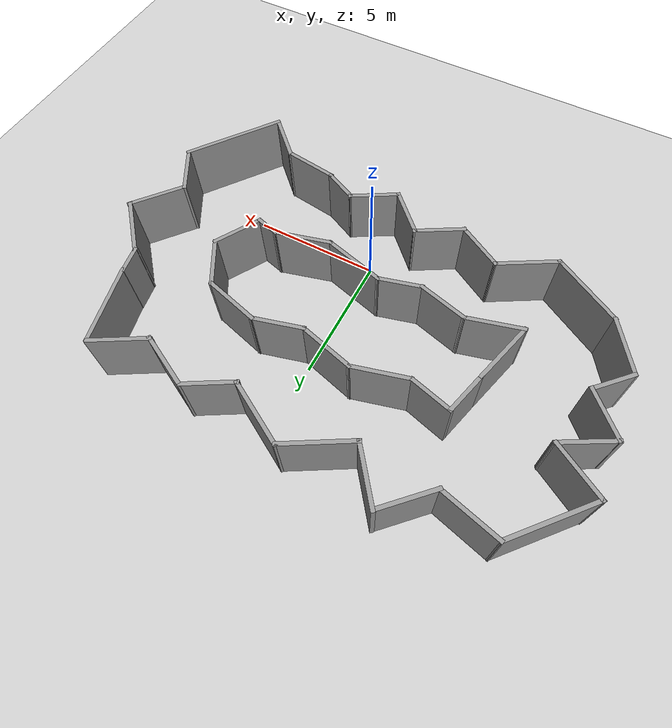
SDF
<sdf version="1.6">
 <world name="default">
  <light name="sun" type="directional">
   <pose>0 0 10 0 -0 0</pose>
   <diffuse>0.8 0.8 0.8 1</diffuse>
   <specular>0.1 0.1 0.1 1</specular>
   <attenuation>
    <range>1000</range>
    <constant>0.9</constant>
    <linear>0.01</linear>
    <quadratic>0.001</quadratic>
   </attenuation>
   <direction>-0.5 0.5 -1</direction>
  </light>
  <model name="ground_plane">
   <static>1</static>
   <link name="link">
    <collision name="collision">
     <geometry><plane><normal>0 0 1</normal><size>100 100</size></plane></geometry>
     <surface><friction><ode><mu>100</mu><mu2>50</mu2></ode></friction></surface>
    </collision>
    <visual name="visual">
     <cast_shadows>0</cast_shadows>
     <geometry><plane><normal>0 0 1</normal><size>100 100</size></plane></geometry>
     <material>
      <script><uri>file://media/materials/scripts/gazebo.material</uri><name>Gazebo/Grey</name></script>
     </material>
    </visual>
   </link>
  </model>
  <gravity>0 0 -9.8</gravity>
  <magnetic_field>6e-06 2.3e-05 -4.2e-05</magnetic_field>
  <atmosphere type="adiabatic"/>
  <physics name="default_physics" default="0" type="ode">
   <max_step_size>0.001</max_step_size>
   <real_time_factor>1</real_time_factor>
   <real_time_update_rate>1000</real_time_update_rate>
  </physics>
  <scene><ambient>0.4 0.4 0.4 1</ambient><background>0.7 0.7 0.7 1</background><shadows>1</shadows></scene>
  <spherical_coordinates>
   <surface_model>EARTH_WGS84</surface_model>
   <latitude_deg>0</latitude_deg>
   <longitude_deg>0</longitude_deg>
   <elevation>0</elevation>
   <heading_deg>0</heading_deg>
  </spherical_coordinates>
  <model name="suyunzzz_word">
   <pose>-0.860375 2.82689 0 0 -0 0</pose>
   <link name="Wall_10">
    <collision name="Wall_10_Collision">
     <geometry><box><size>2 0.15 2.5</size></box></geometry>
     <pose>0 0 1.25 0 -0 0</pose>
    </collision>
    <visual name="Wall_10_Visual">
     <pose>0 0 1.25 0 -0 0</pose>
     <geometry><box><size>2 0.15 2.5</size></box></geometry>
     <material>
      <script><uri>file://media/materials/scripts/gazebo.material</uri><name>Gazebo/Grey</name></script>
      <ambient>1 1 1 1</ambient>
     </material>
    </visual>
    <pose>-2.91981 -4.1287 0 0 0 -0.523599</pose>
   </link>
   <link name="Wall_11">
    <collision name="Wall_11_Collision">
     <geometry><box><size>2 0.15 2.5</size></box></geometry>
     <pose>0 0 1.25 0 -0 0</pose>
    </collision>
    <visual name="Wall_11_Visual">
     <pose>0 0 1.25 0 -0 0</pose>
     <geometry><box><size>2 0.15 2.5</size></box></geometry>
     <material>
      <script><uri>file://media/materials/scripts/gazebo.material</uri><name>Gazebo/Grey</name></script>
      <ambient>1 1 1 1</ambient>
     </material>
    </visual>
    <pose>-1.31767 -4.1287 0 0 -0 0.523599</pose>
   </link>
   <link name="Wall_12">
    <collision name="Wall_12_Collision">
     <geometry><box><size>2 0.15 2.5</size></box></geometry>
     <pose>0 0 1.25 0 -0 0</pose>
    </collision>
    <visual name="Wall_12_Visual">
     <pose>0 0 1.25 0 -0 0</pose>
     <geometry><box><size>2 0.15 2.5</size></box></geometry>
     <material>
      <script><uri>file://media/materials/scripts/gazebo.material</uri><name>Gazebo/Grey</name></script>
      <ambient>1 1 1 1</ambient>
     </material>
    </visual>
    <pose>0.137482 -4.32027 0 0 0 -0.785398</pose>
   </link>
   <link name="Wall_13">
    <collision name="Wall_13_Collision">
     <geometry><box><size>2 0.15 2.5</size></box></geometry>
     <pose>0 0 1.25 0 -0 0</pose>
    </collision>
    <visual name="Wall_13_Visual">
     <pose>0 0 1.25 0 -0 0</pose>
     <geometry><box><size>2 0.15 2.5</size></box></geometry>
     <material>
      <script><uri>file://media/materials/scripts/gazebo.material</uri><name>Gazebo/Grey</name></script>
      <ambient>1 1 1 1</ambient>
     </material>
    </visual>
    <pose>1.59263 -4.51185 0 0 -0 0.523599</pose>
   </link>
   <link name="Wall_14">
    <collision name="Wall_14_Collision">
     <geometry><box><size>1.45825 0.15 2.5</size></box></geometry>
     <pose>0 0 1.25 0 -0 0</pose>
    </collision>
    <visual name="Wall_14_Visual">
     <pose>0 0 1.25 0 -0 0</pose>
     <geometry><box><size>1.45825 0.15 2.5</size></box></geometry>
     <material>
      <script><uri>file://media/materials/scripts/gazebo.material</uri><name>Gazebo/Grey</name></script>
      <ambient>1 1 1 1</ambient>
     </material>
    </visual>
    <pose>2.98507 -4.32893 0 0 0 -0.441634</pose>
   </link>
   <link name="Wall_15">
    <collision name="Wall_15_Collision">
     <geometry><box><size>2.16972 0.15 2.5</size></box></geometry>
     <pose>0 0 1.25 0 -0 0</pose>
    </collision>
    <visual name="Wall_15_Visual">
     <pose>0 0 1.25 0 -0 0</pose>
     <geometry><box><size>2.16972 0.15 2.5</size></box></geometry>
     <material>
      <script><uri>file://media/materials/scripts/gazebo.material</uri><name>Gazebo/Grey</name></script>
      <ambient>1 1 1 1</ambient>
     </material>
    </visual>
    <pose>4.57701 -4.7603 0 0 0 -0.135663</pose>
   </link>
   <link name="Wall_16">
    <collision name="Wall_16_Collision">
     <geometry><box><size>2.03413 0.15 2.5</size></box></geometry>
     <pose>0 0 1.25 0 -0 0</pose>
    </collision>
    <visual name="Wall_16_Visual">
     <pose>0 0 1.25 0 -0 0</pose>
     <geometry><box><size>2.03413 0.15 2.5</size></box></geometry>
     <material>
      <script><uri>file://media/materials/scripts/gazebo.material</uri><name>Gazebo/Grey</name></script>
      <ambient>1 1 1 1</ambient>
     </material>
    </visual>
    <pose>6.25699 -5.53428 0 0 0 -0.765285</pose>
   </link>
   <link name="Wall_17">
    <collision name="Wall_17_Collision">
     <geometry><box><size>4.06353 0.15 2.5</size></box></geometry>
     <pose>0 0 1.25 0 -0 0</pose>
    </collision>
    <visual name="Wall_17_Visual">
     <pose>0 0 1.25 0 -0 0</pose>
     <geometry><box><size>4.06353 0.15 2.5</size></box></geometry>
     <material>
      <script><uri>file://media/materials/scripts/gazebo.material</uri><name>Gazebo/Grey</name></script>
      <ambient>1 1 1 1</ambient>
     </material>
    </visual>
    <pose>8.10434 -4.62093 0 0 -0 0.940844</pose>
   </link>
   <link name="Wall_18">
    <collision name="Wall_18_Collision">
     <geometry><box><size>2 0.15 2.5</size></box></geometry>
     <pose>0 0 1.25 0 -0 0</pose>
    </collision>
    <visual name="Wall_18_Visual">
     <pose>0 0 1.25 0 -0 0</pose>
     <geometry><box><size>2 0.15 2.5</size></box></geometry>
     <material>
      <script><uri>file://media/materials/scripts/gazebo.material</uri><name>Gazebo/Grey</name></script>
      <ambient>1 1 1 1</ambient>
     </material>
    </visual>
    <pose>8.77709 -2.23868 0 0 -0 2.0944</pose>
   </link>
   <link name="Wall_19">
    <collision name="Wall_19_Collision">
     <geometry><box><size>2.30357 0.15 2.5</size></box></geometry>
     <pose>0 0 1.25 0 -0 0</pose>
    </collision>
    <visual name="Wall_19_Visual">
     <pose>0 0 1.25 0 -0 0</pose>
     <geometry><box><size>2.30357 0.15 2.5</size></box></geometry>
     <material>
      <script><uri>file://media/materials/scripts/gazebo.material</uri><name>Gazebo/Grey</name></script>
      <ambient>1 1 1 1</ambient>
     </material>
    </visual>
    <pose>9.01049 -0.60141 0 0 -0 0.889203</pose>
   </link>
   <link name="Wall_20">
    <collision name="Wall_20_Collision">
     <geometry><box><size>2.36672 0.15 2.5</size></box></geometry>
     <pose>0 0 1.25 0 -0 0</pose>
    </collision>
    <visual name="Wall_20_Visual">
     <pose>0 0 1.25 0 -0 0</pose>
     <geometry><box><size>2.36672 0.15 2.5</size></box></geometry>
     <material>
      <script><uri>file://media/materials/scripts/gazebo.material</uri><name>Gazebo/Grey</name></script>
      <ambient>1 1 1 1</ambient>
     </material>
    </visual>
    <pose>8.91029 1.03917 0 0 -0 2.30625</pose>
   </link>
   <link name="Wall_21">
    <collision name="Wall_21_Collision">
     <geometry><box><size>1.09046 0.15 2.5</size></box></geometry>
     <pose>0 0 1.25 0 -0 0</pose>
    </collision>
    <visual name="Wall_21_Visual">
     <pose>0 0 1.25 0 -0 0</pose>
     <geometry><box><size>1.09046 0.15 2.5</size></box></geometry>
     <material>
      <script><uri>file://media/materials/scripts/gazebo.material</uri><name>Gazebo/Grey</name></script>
      <ambient>1 1 1 1</ambient>
     </material>
    </visual>
    <pose>8.05992 2.32274 0 0 -0 1.76176</pose>
   </link>
   <link name="Wall_22">
    <collision name="Wall_22_Collision">
     <geometry><box><size>3.09658 0.15 2.5</size></box></geometry>
     <pose>0 0 1.25 0 -0 0</pose>
    </collision>
    <visual name="Wall_22_Visual">
     <pose>0 0 1.25 0 -0 0</pose>
     <geometry><box><size>3.09658 0.15 2.5</size></box></geometry>
     <material>
      <script><uri>file://media/materials/scripts/gazebo.material</uri><name>Gazebo/Grey</name></script>
      <ambient>1 1 1 1</ambient>
     </material>
    </visual>
    <pose>7.62803 4.21301 0 0 -0 1.81774</pose>
   </link>
   <link name="Wall_23">
    <collision name="Wall_23_Collision">
     <geometry><box><size>2.25 0.15 2.5</size></box></geometry>
     <pose>0 0 1.25 0 -0 0</pose>
    </collision>
    <visual name="Wall_23_Visual">
     <pose>0 0 1.25 0 -0 0</pose>
     <geometry><box><size>2.25 0.15 2.5</size></box></geometry>
     <material>
      <script><uri>file://media/materials/scripts/gazebo.material</uri><name>Gazebo/Grey</name></script>
      <ambient>1 1 1 1</ambient>
     </material>
    </visual>
    <pose>6.34109 5.1341 0 0 0 -2.61799</pose>
   </link>
   <link name="Wall_24">
    <collision name="Wall_24_Collision">
     <geometry><box><size>2.27753 0.15 2.5</size></box></geometry>
     <pose>0 0 1.25 0 -0 0</pose>
    </collision>
    <visual name="Wall_24_Visual">
     <pose>0 0 1.25 0 -0 0</pose>
     <geometry><box><size>2.27753 0.15 2.5</size></box></geometry>
     <material>
      <script><uri>file://media/materials/scripts/gazebo.material</uri><name>Gazebo/Grey</name></script>
      <ambient>1 1 1 1</ambient>
     </material>
    </visual>
    <pose>4.4962 5.06414 0 0 -0 2.68131</pose>
   </link>
   <link name="Wall_25">
    <collision name="Wall_25_Collision">
     <geometry><box><size>2 0.15 2.5</size></box></geometry>
     <pose>0 0 1.25 0 -0 0</pose>
    </collision>
    <visual name="Wall_25_Visual">
     <pose>0 0 1.25 0 -0 0</pose>
     <geometry><box><size>2 0.15 2.5</size></box></geometry>
     <material>
      <script><uri>file://media/materials/scripts/gazebo.material</uri><name>Gazebo/Grey</name></script>
      <ambient>1 1 1 1</ambient>
     </material>
    </visual>
    <pose>2.74207 5.05668 0 0 0 -2.61799</pose>
   </link>
   <link name="Wall_26">
    <collision name="Wall_26_Collision">
     <geometry><box><size>2.64602 0.15 2.5</size></box></geometry>
     <pose>0 0 1.25 0 -0 0</pose>
    </collision>
    <visual name="Wall_26_Visual">
     <pose>0 0 1.25 0 -0 0</pose>
     <geometry><box><size>2.64602 0.15 2.5</size></box></geometry>
     <material>
      <script><uri>file://media/materials/scripts/gazebo.material</uri><name>Gazebo/Grey</name></script>
      <ambient>1 1 1 1</ambient>
     </material>
    </visual>
    <pose>0.850146 5.21795 0 0 -0 2.63432</pose>
   </link>
   <link name="Wall_27">
    <collision name="Wall_27_Collision">
     <geometry><box><size>2.75 0.15 2.5</size></box></geometry>
     <pose>0 0 1.25 0 -0 0</pose>
    </collision>
    <visual name="Wall_27_Visual">
     <pose>0 0 1.25 0 -0 0</pose>
     <geometry><box><size>2.75 0.15 2.5</size></box></geometry>
     <material>
      <script><uri>file://media/materials/scripts/gazebo.material</uri><name>Gazebo/Grey</name></script>
      <ambient>1 1 1 1</ambient>
     </material>
    </visual>
    <pose>-1.36654 5.15673 0 0 0 -2.61799</pose>
   </link>
   <link name="Wall_28">
    <collision name="Wall_28_Collision">
     <geometry><box><size>2.28908 0.15 2.5</size></box></geometry>
     <pose>0 0 1.25 0 -0 0</pose>
    </collision>
    <visual name="Wall_28_Visual">
     <pose>0 0 1.25 0 -0 0</pose>
     <geometry><box><size>2.28908 0.15 2.5</size></box></geometry>
     <material>
      <script><uri>file://media/materials/scripts/gazebo.material</uri><name>Gazebo/Grey</name></script>
      <ambient>1 1 1 1</ambient>
     </material>
    </visual>
    <pose>-3.15613 5.36288 0 0 -0 2.2403</pose>
   </link>
   <link name="Wall_29">
    <collision name="Wall_29_Collision">
     <geometry><box><size>2.25 0.15 2.5</size></box></geometry>
     <pose>0 0 1.25 0 -0 0</pose>
    </collision>
    <visual name="Wall_29_Visual">
     <pose>0 0 1.25 0 -0 0</pose>
     <geometry><box><size>2.25 0.15 2.5</size></box></geometry>
     <material>
      <script><uri>file://media/materials/scripts/gazebo.material</uri><name>Gazebo/Grey</name></script>
      <ambient>1 1 1 1</ambient>
     </material>
    </visual>
    <pose>-4.56235 5.44158 0 0 0 -2.35619</pose>
   </link>
   <link name="Wall_30">
    <collision name="Wall_30_Collision">
     <geometry><box><size>2.37545 0.15 2.5</size></box></geometry>
     <pose>0 0 1.25 0 -0 0</pose>
    </collision>
    <visual name="Wall_30_Visual">
     <pose>0 0 1.25 0 -0 0</pose>
     <geometry><box><size>2.37545 0.15 2.5</size></box></geometry>
     <material>
      <script><uri>file://media/materials/scripts/gazebo.material</uri><name>Gazebo/Grey</name></script>
      <ambient>1 1 1 1</ambient>
     </material>
    </visual>
    <pose>-6.38361 4.98929 0 0 -0 2.89402</pose>
   </link>
   <link name="Wall_31">
    <collision name="Wall_31_Collision">
     <geometry><box><size>3.46437 0.15 2.5</size></box></geometry>
     <pose>0 0 1.25 0 -0 0</pose>
    </collision>
    <visual name="Wall_31_Visual">
     <pose>0 0 1.25 0 -0 0</pose>
     <geometry><box><size>3.46437 0.15 2.5</size></box></geometry>
     <material>
      <script><uri>file://media/materials/scripts/gazebo.material</uri><name>Gazebo/Grey</name></script>
      <ambient>1 1 1 1</ambient>
     </material>
    </visual>
    <pose>-8.56843 4.02788 0 0 0 -2.30152</pose>
   </link>
   <link name="Wall_32">
    <collision name="Wall_32_Collision">
     <geometry><box><size>2.25 0.15 2.5</size></box></geometry>
     <pose>0 0 1.25 0 -0 0</pose>
    </collision>
    <visual name="Wall_32_Visual">
     <pose>0 0 1.25 0 -0 0</pose>
     <geometry><box><size>2.25 0.15 2.5</size></box></geometry>
     <material>
      <script><uri>file://media/materials/scripts/gazebo.material</uri><name>Gazebo/Grey</name></script>
      <ambient>1 1 1 1</ambient>
     </material>
    </visual>
    <pose>-8.78262 2.26879 0 0 0 -0.523599</pose>
   </link>
   <link name="Wall_33">
    <collision name="Wall_33_Collision">
     <geometry><box><size>2.16283 0.15 2.5</size></box></geometry>
     <pose>0 0 1.25 0 -0 0</pose>
    </collision>
    <visual name="Wall_33_Visual">
     <pose>0 0 1.25 0 -0 0</pose>
     <geometry><box><size>2.16283 0.15 2.5</size></box></geometry>
     <material>
      <script><uri>file://media/materials/scripts/gazebo.material</uri><name>Gazebo/Grey</name></script>
      <ambient>1 1 1 1</ambient>
     </material>
    </visual>
    <pose>-8.73558 1.25506 0 0 0 -2.63452</pose>
   </link>
   <link name="Wall_34">
    <collision name="Wall_34_Collision">
     <geometry><box><size>2 0.15 2.5</size></box></geometry>
     <pose>0 0 1.25 0 -0 0</pose>
    </collision>
    <visual name="Wall_34_Visual">
     <pose>0 0 1.25 0 -0 0</pose>
     <geometry><box><size>2 0.15 2.5</size></box></geometry>
     <material>
      <script><uri>file://media/materials/scripts/gazebo.material</uri><name>Gazebo/Grey</name></script>
      <ambient>1 1 1 1</ambient>
     </material>
    </visual>
    <pose>-8.94379 0.112252 0 0 0 -0.785398</pose>
   </link>
   <link name="Wall_35">
    <collision name="Wall_35_Collision">
     <geometry><box><size>1.71515 0.15 2.5</size></box></geometry>
     <pose>0 0 1.25 0 -0 0</pose>
    </collision>
    <visual name="Wall_35_Visual">
     <pose>0 0 1.25 0 -0 0</pose>
     <geometry><box><size>1.71515 0.15 2.5</size></box></geometry>
     <material>
      <script><uri>file://media/materials/scripts/gazebo.material</uri><name>Gazebo/Grey</name></script>
      <ambient>1 1 1 1</ambient>
     </material>
    </visual>
    <pose>-8.85256 -1.10309 0 0 0 -2.34181</pose>
   </link>
   <link name="Wall_36">
    <collision name="Wall_36_Collision">
     <geometry><box><size>2.25868 0.15 2.5</size></box></geometry>
     <pose>0 0 1.25 0 -0 0</pose>
    </collision>
    <visual name="Wall_36_Visual">
     <pose>0 0 1.25 0 -0 0</pose>
     <geometry><box><size>2.25868 0.15 2.5</size></box></geometry>
     <material>
      <script><uri>file://media/materials/scripts/gazebo.material</uri><name>Gazebo/Grey</name></script>
      <ambient>1 1 1 1</ambient>
     </material>
    </visual>
    <pose>-8.81106 -2.54027 0 0 0 -0.980508</pose>
   </link>
   <link name="Wall_39">
    <collision name="Wall_39_Collision">
     <geometry><box><size>2.25 0.15 2.5</size></box></geometry>
     <pose>0 0 1.25 0 -0 0</pose>
    </collision>
    <visual name="Wall_39_Visual">
     <pose>0 0 1.25 0 -0 0</pose>
     <geometry><box><size>2.25 0.15 2.5</size></box></geometry>
     <material>
      <script><uri>file://media/materials/scripts/gazebo.material</uri><name>Gazebo/Grey</name></script>
      <ambient>1 1 1 1</ambient>
     </material>
    </visual>
    <pose>-4.61751 -1.33188 0 0 -0 0.261799</pose>
   </link>
   <link name="Wall_40">
    <collision name="Wall_40_Collision">
     <geometry><box><size>2 0.15 2.5</size></box></geometry>
     <pose>0 0 1.25 0 -0 0</pose>
    </collision>
    <visual name="Wall_40_Visual">
     <pose>0 0 1.25 0 -0 0</pose>
     <geometry><box><size>2 0.15 2.5</size></box></geometry>
     <material>
      <script><uri>file://media/materials/scripts/gazebo.material</uri><name>Gazebo/Grey</name></script>
      <ambient>1 1 1 1</ambient>
     </material>
    </visual>
    <pose>-2.7098 -1.29953 0 0 0 -0.261799</pose>
   </link>
   <link name="Wall_41">
    <collision name="Wall_41_Collision">
     <geometry><box><size>1.75 0.15 2.5</size></box></geometry>
     <pose>0 0 1.25 0 -0 0</pose>
    </collision>
    <visual name="Wall_41_Visual">
     <pose>0 0 1.25 0 -0 0</pose>
     <geometry><box><size>1.75 0.15 2.5</size></box></geometry>
     <material>
      <script><uri>file://media/materials/scripts/gazebo.material</uri><name>Gazebo/Grey</name></script>
      <ambient>1 1 1 1</ambient>
     </material>
    </visual>
    <pose>-1.04358 -1.33188 0 0 -0 0.261799</pose>
   </link>
   <link name="Wall_42">
    <collision name="Wall_42_Collision">
     <geometry><box><size>2.5 0.15 2.5</size></box></geometry>
     <pose>0 0 1.25 0 -0 0</pose>
    </collision>
    <visual name="Wall_42_Visual">
     <pose>0 0 1.25 0 -0 0</pose>
     <geometry><box><size>2.5 0.15 2.5</size></box></geometry>
     <material>
      <script><uri>file://media/materials/scripts/gazebo.material</uri><name>Gazebo/Grey</name></script>
      <ambient>1 1 1 1</ambient>
     </material>
    </visual>
    <pose>0.864121 -1.42894 0 0 0 -0.261799</pose>
   </link>
   <link name="Wall_43">
    <collision name="Wall_43_Collision">
     <geometry><box><size>2.25 0.15 2.5</size></box></geometry>
     <pose>0 0 1.25 0 -0 0</pose>
    </collision>
    <visual name="Wall_43_Visual">
     <pose>0 0 1.25 0 -0 0</pose>
     <geometry><box><size>2.25 0.15 2.5</size></box></geometry>
     <material>
      <script><uri>file://media/materials/scripts/gazebo.material</uri><name>Gazebo/Grey</name></script>
      <ambient>1 1 1 1</ambient>
     </material>
    </visual>
    <pose>3.0133 -1.46129 0 0 -0 0.261799</pose>
   </link>
   <link name="Wall_44">
    <collision name="Wall_44_Collision">
     <geometry><box><size>1 0.15 2.5</size></box></geometry>
     <pose>0 0 1.25 0 -0 0</pose>
    </collision>
    <visual name="Wall_44_Visual">
     <pose>0 0 1.25 0 -0 0</pose>
     <geometry><box><size>1 0.15 2.5</size></box></geometry>
     <material>
      <script><uri>file://media/materials/scripts/gazebo.material</uri><name>Gazebo/Grey</name></script>
      <ambient>1 1 1 1</ambient>
     </material>
    </visual>
    <pose>4.43805 -1.29953 0 0 0 -0.261799</pose>
   </link>
   <link name="Wall_45">
    <collision name="Wall_45_Collision">
     <geometry><box><size>2 0.15 2.5</size></box></geometry>
     <pose>0 0 1.25 0 -0 0</pose>
    </collision>
    <visual name="Wall_45_Visual">
     <pose>0 0 1.25 0 -0 0</pose>
     <geometry><box><size>2 0.15 2.5</size></box></geometry>
     <material>
      <script><uri>file://media/materials/scripts/gazebo.material</uri><name>Gazebo/Grey</name></script>
      <ambient>1 1 1 1</ambient>
     </material>
    </visual>
    <pose>5.31107 -0.60845 0 0 -0 1.0472</pose>
   </link>
   <link name="Wall_46">
    <collision name="Wall_46_Collision">
     <geometry><box><size>2 0.15 2.5</size></box></geometry>
     <pose>0 0 1.25 0 -0 0</pose>
    </collision>
    <visual name="Wall_46_Visual">
     <pose>0 0 1.25 0 -0 0</pose>
     <geometry><box><size>2 0.15 2.5</size></box></geometry>
     <material>
      <script><uri>file://media/materials/scripts/gazebo.material</uri><name>Gazebo/Grey</name></script>
      <ambient>1 1 1 1</ambient>
     </material>
    </visual>
    <pose>5.31107 0.993698 0 0 -0 2.0944</pose>
   </link>
   <link name="Wall_47">
    <collision name="Wall_47_Collision">
     <geometry><box><size>2.25 0.15 2.5</size></box></geometry>
     <pose>0 0 1.25 0 -0 0</pose>
    </collision>
    <visual name="Wall_47_Visual">
     <pose>0 0 1.25 0 -0 0</pose>
     <geometry><box><size>2.25 0.15 2.5</size></box></geometry>
     <material>
      <script><uri>file://media/materials/scripts/gazebo.material</uri><name>Gazebo/Grey</name></script>
      <ambient>1 1 1 1</ambient>
     </material>
    </visual>
    <pose>3.83434 2.06653 0 0 -0 2.87979</pose>
   </link>
   <link name="Wall_48">
    <collision name="Wall_48_Collision">
     <geometry><box><size>2 0.15 2.5</size></box></geometry>
     <pose>0 0 1.25 0 -0 0</pose>
    </collision>
    <visual name="Wall_48_Visual">
     <pose>0 0 1.25 0 -0 0</pose>
     <geometry><box><size>2 0.15 2.5</size></box></geometry>
     <material>
      <script><uri>file://media/materials/scripts/gazebo.material</uri><name>Gazebo/Grey</name></script>
      <ambient>1 1 1 1</ambient>
     </material>
    </visual>
    <pose>1.92664 2.09888 0 0 0 -2.87979</pose>
   </link>
   <link name="Wall_49">
    <collision name="Wall_49_Collision">
     <geometry><box><size>2.25 0.15 2.5</size></box></geometry>
     <pose>0 0 1.25 0 -0 0</pose>
    </collision>
    <visual name="Wall_49_Visual">
     <pose>0 0 1.25 0 -0 0</pose>
     <geometry><box><size>2.25 0.15 2.5</size></box></geometry>
     <material>
      <script><uri>file://media/materials/scripts/gazebo.material</uri><name>Gazebo/Grey</name></script>
      <ambient>1 1 1 1</ambient>
     </material>
    </visual>
    <pose>0.018935 2.13124 0 0 -0 2.87979</pose>
   </link>
   <link name="Wall_50">
    <collision name="Wall_50_Collision">
     <geometry><box><size>2.25 0.15 2.5</size></box></geometry>
     <pose>0 0 1.25 0 -0 0</pose>
    </collision>
    <visual name="Wall_50_Visual">
     <pose>0 0 1.25 0 -0 0</pose>
     <geometry><box><size>2.25 0.15 2.5</size></box></geometry>
     <material>
      <script><uri>file://media/materials/scripts/gazebo.material</uri><name>Gazebo/Grey</name></script>
      <ambient>1 1 1 1</ambient>
     </material>
    </visual>
    <pose>-2.00951 2.13124 0 0 0 -2.87979</pose>
   </link>
   <link name="Wall_51">
    <collision name="Wall_51_Collision">
     <geometry><box><size>1.75 0.15 2.5</size></box></geometry>
     <pose>0 0 1.25 0 -0 0</pose>
    </collision>
    <visual name="Wall_51_Visual">
     <pose>0 0 1.25 0 -0 0</pose>
     <geometry><box><size>1.75 0.15 2.5</size></box></geometry>
     <material>
      <script><uri>file://media/materials/scripts/gazebo.material</uri><name>Gazebo/Grey</name></script>
      <ambient>1 1 1 1</ambient>
     </material>
    </visual>
    <pose>-3.79647 2.06653 0 0 -0 2.87979</pose>
   </link>
   <link name="Wall_52">
    <collision name="Wall_52_Collision">
     <geometry><box><size>1.75 0.15 2.5</size></box></geometry>
     <pose>0 0 1.25 0 -0 0</pose>
    </collision>
    <visual name="Wall_52_Visual">
     <pose>0 0 1.25 0 -0 0</pose>
     <geometry><box><size>1.75 0.15 2.5</size></box></geometry>
     <material>
      <script><uri>file://media/materials/scripts/gazebo.material</uri><name>Gazebo/Grey</name></script>
      <ambient>1 1 1 1</ambient>
     </material>
    </visual>
    <pose>-4.77627 1.50084 0 0 0 -1.8326</pose>
   </link>
   <link name="Wall_53">
    <collision name="Wall_53_Collision">
     <geometry><box><size>2.57022 0.15 2.5</size></box></geometry>
     <pose>0 0 1.25 0 -0 0</pose>
    </collision>
    <visual name="Wall_53_Visual">
     <pose>0 0 1.25 0 -0 0</pose>
     <geometry><box><size>2.57022 0.15 2.5</size></box></geometry>
     <material>
      <script><uri>file://media/materials/scripts/gazebo.material</uri><name>Gazebo/Grey</name></script>
      <ambient>1 1 1 1</ambient>
     </material>
    </visual>
    <pose>-5.30753 -0.437766 0 0 0 -1.84202</pose>
   </link>
   <link name="Wall_8">
    <collision name="Wall_8_Collision">
     <geometry><box><size>3 0.15 2.5</size></box></geometry>
     <pose>0 0 1.25 0 -0 0</pose>
    </collision>
    <visual name="Wall_8_Visual">
     <pose>0 0 1.25 0 -0 0</pose>
     <geometry><box><size>3 0.15 2.5</size></box></geometry>
     <material>
      <script><uri>file://media/materials/scripts/gazebo.material</uri><name>Gazebo/Grey</name></script>
      <ambient>1 1 1 1</ambient>
     </material>
    </visual>
    <pose>-6.99013 -4.1287 0 0 0 -0.523599</pose>
   </link>
   <link name="Wall_9">
    <collision name="Wall_9_Collision">
     <geometry><box><size>2.5 0.15 2.5</size></box></geometry>
     <pose>0 0 1.25 0 -0 0</pose>
    </collision>
    <visual name="Wall_9_Visual">
     <pose>0 0 1.25 0 -0 0</pose>
     <geometry><box><size>2.5 0.15 2.5</size></box></geometry>
     <material>
      <script><uri>file://media/materials/scripts/gazebo.material</uri><name>Gazebo/Grey</name></script>
      <ambient>1 1 1 1</ambient>
     </material>
    </visual>
    <pose>-4.73846 -4.2537 0 0 -0 0.523599</pose>
   </link>
   <static>1</static>
  </model>
 </world>
</sdf>
